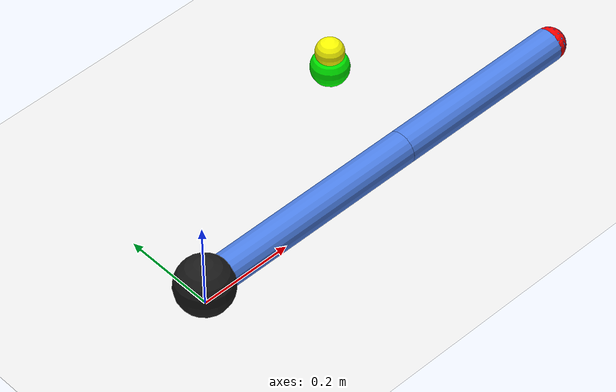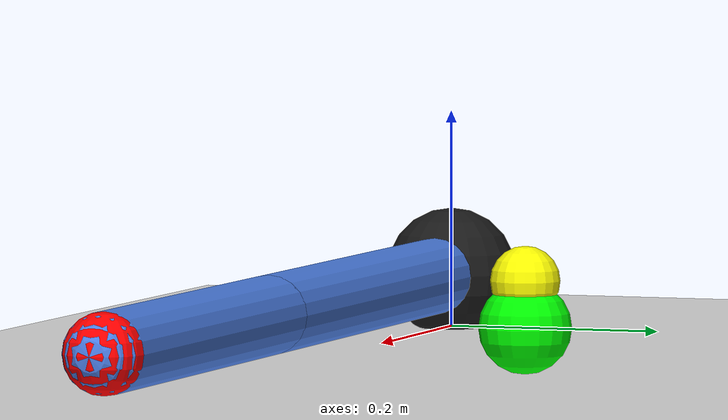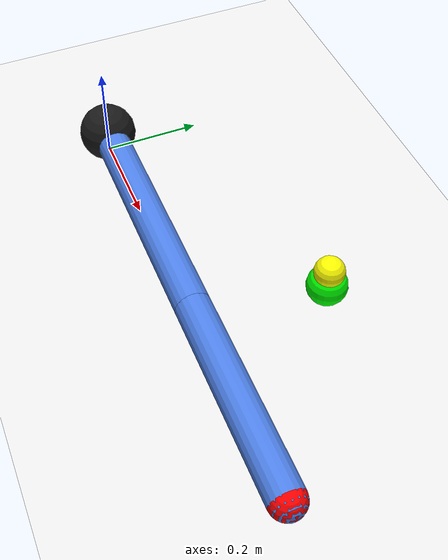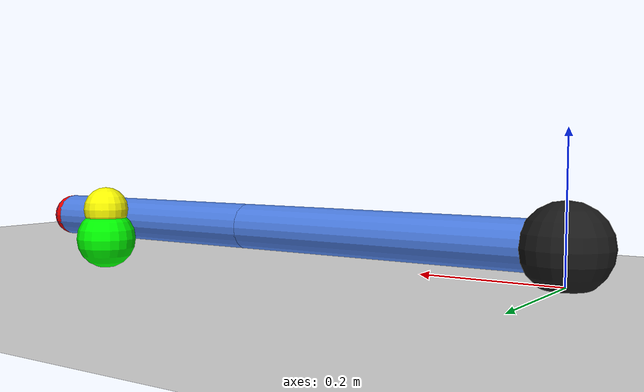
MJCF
<mujoco model="two_link_arm">
  <compiler angle="radian"/>

  <option timestep="0.002" gravity="0 0 -9.81"/>

  <default>
    <joint type="hinge" axis="0 0 1" damping="0.05"/>
    <geom type="capsule" size="0.035" density="800" rgba="0.3 0.5 0.9 1"/>
    <motor ctrllimited="true" ctrlrange="-20 20"/>
  </default>

  <worldbody>
    <light name="top_light" pos="0 0 2"/>

    <camera name="fixed" pos="0 -1.8 1.2" xyaxes="1 0 0 0 0.6 0.8"/>

    <geom name="floor" type="plane" size="1.5 1.5 0.01" rgba="0.9 0.9 0.9 1"/>

    <site name="target_site" type="sphere" pos="0.55 0.25 0.05" size="0.04" rgba="0 1 0 1"/>

    <site name="admittance_ref_site" type="sphere" pos="0.55 0.25 0.09" size="0.03" rgba="1 1 0 1"/>

    <body name="base" pos="0 0 0.05">
      <geom name="base_geom" type="sphere" size="0.06" rgba="0.1 0.1 0.1 1"/>

      <body name="link1" pos="0 0 0">
        <joint name="joint1" type="hinge" axis="0 0 1" range="-3.14 3.14" limited="true"/>
        <geom name="link1_geom" fromto="0 0 0 0.5 0 0"/>

        <body name="link2" pos="0.5 0 0">
          <joint name="joint2" type="hinge" axis="0 0 1" range="-3.14 3.14" limited="true"/>
          <geom name="link2_geom" fromto="0 0 0 0.4 0 0"/>

          <site name="ee_site" pos="0.4 0 0" size="0.035" rgba="1 0 0 1"/>
        </body>
      </body>
    </body>
  </worldbody>

  <actuator>
    <motor name="motor1" joint="joint1" gear="1"/>
    <motor name="motor2" joint="joint2" gear="1"/>
  </actuator>
</mujoco>
